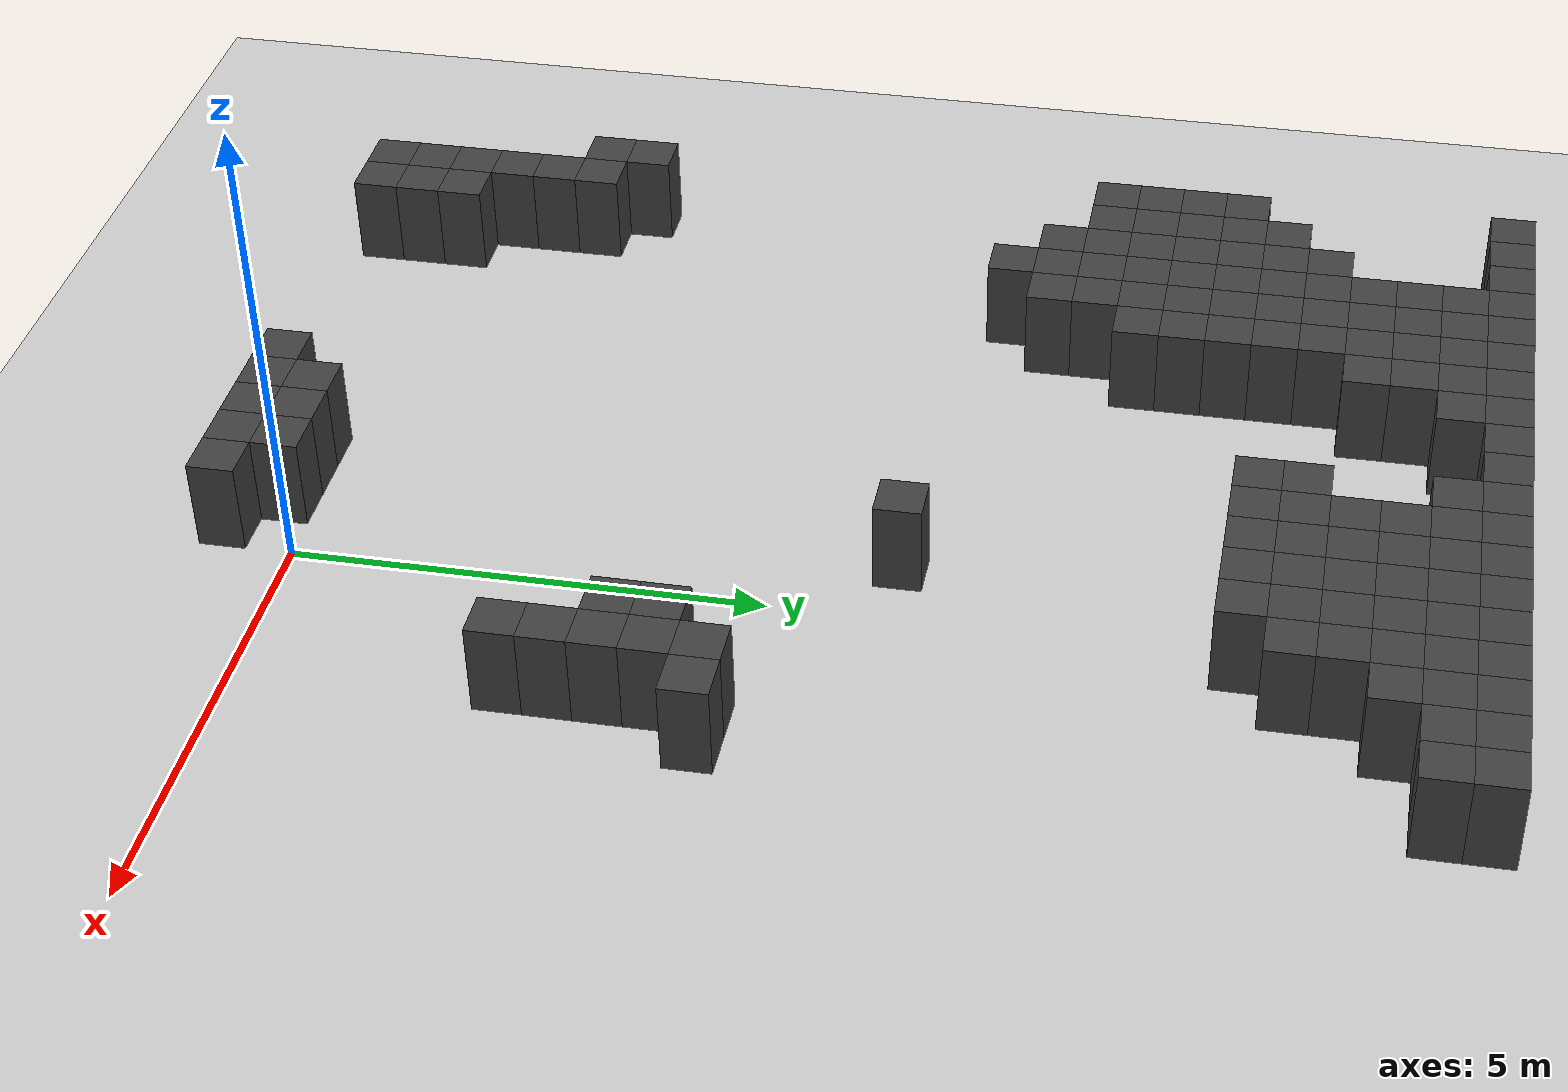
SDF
<sdf version="1.7">
 <world name="map_8843">
  <model name="ground_plane">
   <static>true</static>
   <link name="link">
    <collision name="collision">
     <geometry><plane><normal>0 0 1</normal><size>200 200</size></plane></geometry>
    </collision>
    <visual name="visual">
     <geometry><plane><normal>0 0 1</normal><size>200 200</size></plane></geometry>
     <material><ambient>0.8 0.8 0.8 1</ambient><diffuse>0.8 0.8 0.8 1</diffuse></material>
    </visual>
   </link>
  </model>
  <model name="maze_environment">
   <static>true</static>
   <link name="wall_11">
    <pose>-6.750 12.250 0.500 0 0 0</pose>
    <collision name="col"><geometry><box><size>0.5 0.5 1.0</size></box></geometry></collision>
    <visual name="vis">
     <geometry><box><size>0.5 0.5 1.0</size></box></geometry>
     <material><ambient>0.15 0.15 0.15 1</ambient><diffuse>0.25 0.25 0.25 1</diffuse></material>
    </visual>
   </link>
   <link name="wall_12">
    <pose>-6.250 12.250 0.500 0 0 0</pose>
    <collision name="col"><geometry><box><size>0.5 0.5 1.0</size></box></geometry></collision>
    <visual name="vis">
     <geometry><box><size>0.5 0.5 1.0</size></box></geometry>
     <material><ambient>0.15 0.15 0.15 1</ambient><diffuse>0.25 0.25 0.25 1</diffuse></material>
    </visual>
   </link>
   <link name="wall_13">
    <pose>-5.750 12.250 0.500 0 0 0</pose>
    <collision name="col"><geometry><box><size>0.5 0.5 1.0</size></box></geometry></collision>
    <visual name="vis">
     <geometry><box><size>0.5 0.5 1.0</size></box></geometry>
     <material><ambient>0.15 0.15 0.15 1</ambient><diffuse>0.25 0.25 0.25 1</diffuse></material>
    </visual>
   </link>
   <link name="wall_14">
    <pose>-5.250 12.250 0.500 0 0 0</pose>
    <collision name="col"><geometry><box><size>0.5 0.5 1.0</size></box></geometry></collision>
    <visual name="vis">
     <geometry><box><size>0.5 0.5 1.0</size></box></geometry>
     <material><ambient>0.15 0.15 0.15 1</ambient><diffuse>0.25 0.25 0.25 1</diffuse></material>
    </visual>
   </link>
   <link name="wall_15">
    <pose>-4.750 12.250 0.500 0 0 0</pose>
    <collision name="col"><geometry><box><size>0.5 0.5 1.0</size></box></geometry></collision>
    <visual name="vis">
     <geometry><box><size>0.5 0.5 1.0</size></box></geometry>
     <material><ambient>0.15 0.15 0.15 1</ambient><diffuse>0.25 0.25 0.25 1</diffuse></material>
    </visual>
   </link>
   <link name="wall_16">
    <pose>-4.250 12.250 0.500 0 0 0</pose>
    <collision name="col"><geometry><box><size>0.5 0.5 1.0</size></box></geometry></collision>
    <visual name="vis">
     <geometry><box><size>0.5 0.5 1.0</size></box></geometry>
     <material><ambient>0.15 0.15 0.15 1</ambient><diffuse>0.25 0.25 0.25 1</diffuse></material>
    </visual>
   </link>
   <link name="wall_17">
    <pose>-3.750 12.250 0.500 0 0 0</pose>
    <collision name="col"><geometry><box><size>0.5 0.5 1.0</size></box></geometry></collision>
    <visual name="vis">
     <geometry><box><size>0.5 0.5 1.0</size></box></geometry>
     <material><ambient>0.15 0.15 0.15 1</ambient><diffuse>0.25 0.25 0.25 1</diffuse></material>
    </visual>
   </link>
   <link name="wall_18">
    <pose>-3.250 12.250 0.500 0 0 0</pose>
    <collision name="col"><geometry><box><size>0.5 0.5 1.0</size></box></geometry></collision>
    <visual name="vis">
     <geometry><box><size>0.5 0.5 1.0</size></box></geometry>
     <material><ambient>0.15 0.15 0.15 1</ambient><diffuse>0.25 0.25 0.25 1</diffuse></material>
    </visual>
   </link>
   <link name="wall_19">
    <pose>-2.750 12.250 0.500 0 0 0</pose>
    <collision name="col"><geometry><box><size>0.5 0.5 1.0</size></box></geometry></collision>
    <visual name="vis">
     <geometry><box><size>0.5 0.5 1.0</size></box></geometry>
     <material><ambient>0.15 0.15 0.15 1</ambient><diffuse>0.25 0.25 0.25 1</diffuse></material>
    </visual>
   </link>
   <link name="wall_20">
    <pose>-2.250 12.250 0.500 0 0 0</pose>
    <collision name="col"><geometry><box><size>0.5 0.5 1.0</size></box></geometry></collision>
    <visual name="vis">
     <geometry><box><size>0.5 0.5 1.0</size></box></geometry>
     <material><ambient>0.15 0.15 0.15 1</ambient><diffuse>0.25 0.25 0.25 1</diffuse></material>
    </visual>
   </link>
   <link name="wall_21">
    <pose>-1.750 12.250 0.500 0 0 0</pose>
    <collision name="col"><geometry><box><size>0.5 0.5 1.0</size></box></geometry></collision>
    <visual name="vis">
     <geometry><box><size>0.5 0.5 1.0</size></box></geometry>
     <material><ambient>0.15 0.15 0.15 1</ambient><diffuse>0.25 0.25 0.25 1</diffuse></material>
    </visual>
   </link>
   <link name="wall_22">
    <pose>-1.250 12.250 0.500 0 0 0</pose>
    <collision name="col"><geometry><box><size>0.5 0.5 1.0</size></box></geometry></collision>
    <visual name="vis">
     <geometry><box><size>0.5 0.5 1.0</size></box></geometry>
     <material><ambient>0.15 0.15 0.15 1</ambient><diffuse>0.25 0.25 0.25 1</diffuse></material>
    </visual>
   </link>
   <link name="wall_23">
    <pose>-0.750 12.250 0.500 0 0 0</pose>
    <collision name="col"><geometry><box><size>0.5 0.5 1.0</size></box></geometry></collision>
    <visual name="vis">
     <geometry><box><size>0.5 0.5 1.0</size></box></geometry>
     <material><ambient>0.15 0.15 0.15 1</ambient><diffuse>0.25 0.25 0.25 1</diffuse></material>
    </visual>
   </link>
   <link name="wall_24">
    <pose>-0.250 12.250 0.500 0 0 0</pose>
    <collision name="col"><geometry><box><size>0.5 0.5 1.0</size></box></geometry></collision>
    <visual name="vis">
     <geometry><box><size>0.5 0.5 1.0</size></box></geometry>
     <material><ambient>0.15 0.15 0.15 1</ambient><diffuse>0.25 0.25 0.25 1</diffuse></material>
    </visual>
   </link>
   <link name="wall_25">
    <pose>0.250 12.250 0.500 0 0 0</pose>
    <collision name="col"><geometry><box><size>0.5 0.5 1.0</size></box></geometry></collision>
    <visual name="vis">
     <geometry><box><size>0.5 0.5 1.0</size></box></geometry>
     <material><ambient>0.15 0.15 0.15 1</ambient><diffuse>0.25 0.25 0.25 1</diffuse></material>
    </visual>
   </link>
   <link name="wall_26">
    <pose>0.750 12.250 0.500 0 0 0</pose>
    <collision name="col"><geometry><box><size>0.5 0.5 1.0</size></box></geometry></collision>
    <visual name="vis">
     <geometry><box><size>0.5 0.5 1.0</size></box></geometry>
     <material><ambient>0.15 0.15 0.15 1</ambient><diffuse>0.25 0.25 0.25 1</diffuse></material>
    </visual>
   </link>
   <link name="wall_27">
    <pose>1.250 12.250 0.500 0 0 0</pose>
    <collision name="col"><geometry><box><size>0.5 0.5 1.0</size></box></geometry></collision>
    <visual name="vis">
     <geometry><box><size>0.5 0.5 1.0</size></box></geometry>
     <material><ambient>0.15 0.15 0.15 1</ambient><diffuse>0.25 0.25 0.25 1</diffuse></material>
    </visual>
   </link>
   <link name="wall_28">
    <pose>1.750 12.250 0.500 0 0 0</pose>
    <collision name="col"><geometry><box><size>0.5 0.5 1.0</size></box></geometry></collision>
    <visual name="vis">
     <geometry><box><size>0.5 0.5 1.0</size></box></geometry>
     <material><ambient>0.15 0.15 0.15 1</ambient><diffuse>0.25 0.25 0.25 1</diffuse></material>
    </visual>
   </link>
   <link name="wall_29">
    <pose>2.250 12.250 0.500 0 0 0</pose>
    <collision name="col"><geometry><box><size>0.5 0.5 1.0</size></box></geometry></collision>
    <visual name="vis">
     <geometry><box><size>0.5 0.5 1.0</size></box></geometry>
     <material><ambient>0.15 0.15 0.15 1</ambient><diffuse>0.25 0.25 0.25 1</diffuse></material>
    </visual>
   </link>
   <link name="wall_54">
    <pose>-5.250 11.750 0.500 0 0 0</pose>
    <collision name="col"><geometry><box><size>0.5 0.5 1.0</size></box></geometry></collision>
    <visual name="vis">
     <geometry><box><size>0.5 0.5 1.0</size></box></geometry>
     <material><ambient>0.15 0.15 0.15 1</ambient><diffuse>0.25 0.25 0.25 1</diffuse></material>
    </visual>
   </link>
   <link name="wall_55">
    <pose>-4.750 11.750 0.500 0 0 0</pose>
    <collision name="col"><geometry><box><size>0.5 0.5 1.0</size></box></geometry></collision>
    <visual name="vis">
     <geometry><box><size>0.5 0.5 1.0</size></box></geometry>
     <material><ambient>0.15 0.15 0.15 1</ambient><diffuse>0.25 0.25 0.25 1</diffuse></material>
    </visual>
   </link>
   <link name="wall_56">
    <pose>-4.250 11.750 0.500 0 0 0</pose>
    <collision name="col"><geometry><box><size>0.5 0.5 1.0</size></box></geometry></collision>
    <visual name="vis">
     <geometry><box><size>0.5 0.5 1.0</size></box></geometry>
     <material><ambient>0.15 0.15 0.15 1</ambient><diffuse>0.25 0.25 0.25 1</diffuse></material>
    </visual>
   </link>
   <link name="wall_57">
    <pose>-3.750 11.750 0.500 0 0 0</pose>
    <collision name="col"><geometry><box><size>0.5 0.5 1.0</size></box></geometry></collision>
    <visual name="vis">
     <geometry><box><size>0.5 0.5 1.0</size></box></geometry>
     <material><ambient>0.15 0.15 0.15 1</ambient><diffuse>0.25 0.25 0.25 1</diffuse></material>
    </visual>
   </link>
   <link name="wall_58">
    <pose>-3.250 11.750 0.500 0 0 0</pose>
    <collision name="col"><geometry><box><size>0.5 0.5 1.0</size></box></geometry></collision>
    <visual name="vis">
     <geometry><box><size>0.5 0.5 1.0</size></box></geometry>
     <material><ambient>0.15 0.15 0.15 1</ambient><diffuse>0.25 0.25 0.25 1</diffuse></material>
    </visual>
   </link>
   <link name="wall_59">
    <pose>-1.750 11.750 0.500 0 0 0</pose>
    <collision name="col"><geometry><box><size>0.5 0.5 1.0</size></box></geometry></collision>
    <visual name="vis">
     <geometry><box><size>0.5 0.5 1.0</size></box></geometry>
     <material><ambient>0.15 0.15 0.15 1</ambient><diffuse>0.25 0.25 0.25 1</diffuse></material>
    </visual>
   </link>
   <link name="wall_60">
    <pose>-1.250 11.750 0.500 0 0 0</pose>
    <collision name="col"><geometry><box><size>0.5 0.5 1.0</size></box></geometry></collision>
    <visual name="vis">
     <geometry><box><size>0.5 0.5 1.0</size></box></geometry>
     <material><ambient>0.15 0.15 0.15 1</ambient><diffuse>0.25 0.25 0.25 1</diffuse></material>
    </visual>
   </link>
   <link name="wall_61">
    <pose>-0.750 11.750 0.500 0 0 0</pose>
    <collision name="col"><geometry><box><size>0.5 0.5 1.0</size></box></geometry></collision>
    <visual name="vis">
     <geometry><box><size>0.5 0.5 1.0</size></box></geometry>
     <material><ambient>0.15 0.15 0.15 1</ambient><diffuse>0.25 0.25 0.25 1</diffuse></material>
    </visual>
   </link>
   <link name="wall_62">
    <pose>-0.250 11.750 0.500 0 0 0</pose>
    <collision name="col"><geometry><box><size>0.5 0.5 1.0</size></box></geometry></collision>
    <visual name="vis">
     <geometry><box><size>0.5 0.5 1.0</size></box></geometry>
     <material><ambient>0.15 0.15 0.15 1</ambient><diffuse>0.25 0.25 0.25 1</diffuse></material>
    </visual>
   </link>
   <link name="wall_63">
    <pose>0.250 11.750 0.500 0 0 0</pose>
    <collision name="col"><geometry><box><size>0.5 0.5 1.0</size></box></geometry></collision>
    <visual name="vis">
     <geometry><box><size>0.5 0.5 1.0</size></box></geometry>
     <material><ambient>0.15 0.15 0.15 1</ambient><diffuse>0.25 0.25 0.25 1</diffuse></material>
    </visual>
   </link>
   <link name="wall_64">
    <pose>0.750 11.750 0.500 0 0 0</pose>
    <collision name="col"><geometry><box><size>0.5 0.5 1.0</size></box></geometry></collision>
    <visual name="vis">
     <geometry><box><size>0.5 0.5 1.0</size></box></geometry>
     <material><ambient>0.15 0.15 0.15 1</ambient><diffuse>0.25 0.25 0.25 1</diffuse></material>
    </visual>
   </link>
   <link name="wall_65">
    <pose>1.250 11.750 0.500 0 0 0</pose>
    <collision name="col"><geometry><box><size>0.5 0.5 1.0</size></box></geometry></collision>
    <visual name="vis">
     <geometry><box><size>0.5 0.5 1.0</size></box></geometry>
     <material><ambient>0.15 0.15 0.15 1</ambient><diffuse>0.25 0.25 0.25 1</diffuse></material>
    </visual>
   </link>
   <link name="wall_66">
    <pose>1.750 11.750 0.500 0 0 0</pose>
    <collision name="col"><geometry><box><size>0.5 0.5 1.0</size></box></geometry></collision>
    <visual name="vis">
     <geometry><box><size>0.5 0.5 1.0</size></box></geometry>
     <material><ambient>0.15 0.15 0.15 1</ambient><diffuse>0.25 0.25 0.25 1</diffuse></material>
    </visual>
   </link>
   <link name="wall_67">
    <pose>2.250 11.750 0.500 0 0 0</pose>
    <collision name="col"><geometry><box><size>0.5 0.5 1.0</size></box></geometry></collision>
    <visual name="vis">
     <geometry><box><size>0.5 0.5 1.0</size></box></geometry>
     <material><ambient>0.15 0.15 0.15 1</ambient><diffuse>0.25 0.25 0.25 1</diffuse></material>
    </visual>
   </link>
   <link name="wall_87">
    <pose>-5.250 11.250 0.500 0 0 0</pose>
    <collision name="col"><geometry><box><size>0.5 0.5 1.0</size></box></geometry></collision>
    <visual name="vis">
     <geometry><box><size>0.5 0.5 1.0</size></box></geometry>
     <material><ambient>0.15 0.15 0.15 1</ambient><diffuse>0.25 0.25 0.25 1</diffuse></material>
    </visual>
   </link>
   <link name="wall_88">
    <pose>-4.750 11.250 0.500 0 0 0</pose>
    <collision name="col"><geometry><box><size>0.5 0.5 1.0</size></box></geometry></collision>
    <visual name="vis">
     <geometry><box><size>0.5 0.5 1.0</size></box></geometry>
     <material><ambient>0.15 0.15 0.15 1</ambient><diffuse>0.25 0.25 0.25 1</diffuse></material>
    </visual>
   </link>
   <link name="wall_89">
    <pose>-4.250 11.250 0.500 0 0 0</pose>
    <collision name="col"><geometry><box><size>0.5 0.5 1.0</size></box></geometry></collision>
    <visual name="vis">
     <geometry><box><size>0.5 0.5 1.0</size></box></geometry>
     <material><ambient>0.15 0.15 0.15 1</ambient><diffuse>0.25 0.25 0.25 1</diffuse></material>
    </visual>
   </link>
   <link name="wall_90">
    <pose>-3.750 11.250 0.500 0 0 0</pose>
    <collision name="col"><geometry><box><size>0.5 0.5 1.0</size></box></geometry></collision>
    <visual name="vis">
     <geometry><box><size>0.5 0.5 1.0</size></box></geometry>
     <material><ambient>0.15 0.15 0.15 1</ambient><diffuse>0.25 0.25 0.25 1</diffuse></material>
    </visual>
   </link>
   <link name="wall_91">
    <pose>-1.250 11.250 0.500 0 0 0</pose>
    <collision name="col"><geometry><box><size>0.5 0.5 1.0</size></box></geometry></collision>
    <visual name="vis">
     <geometry><box><size>0.5 0.5 1.0</size></box></geometry>
     <material><ambient>0.15 0.15 0.15 1</ambient><diffuse>0.25 0.25 0.25 1</diffuse></material>
    </visual>
   </link>
   <link name="wall_92">
    <pose>-0.750 11.250 0.500 0 0 0</pose>
    <collision name="col"><geometry><box><size>0.5 0.5 1.0</size></box></geometry></collision>
    <visual name="vis">
     <geometry><box><size>0.5 0.5 1.0</size></box></geometry>
     <material><ambient>0.15 0.15 0.15 1</ambient><diffuse>0.25 0.25 0.25 1</diffuse></material>
    </visual>
   </link>
   <link name="wall_93">
    <pose>-0.250 11.250 0.500 0 0 0</pose>
    <collision name="col"><geometry><box><size>0.5 0.5 1.0</size></box></geometry></collision>
    <visual name="vis">
     <geometry><box><size>0.5 0.5 1.0</size></box></geometry>
     <material><ambient>0.15 0.15 0.15 1</ambient><diffuse>0.25 0.25 0.25 1</diffuse></material>
    </visual>
   </link>
   <link name="wall_94">
    <pose>0.250 11.250 0.500 0 0 0</pose>
    <collision name="col"><geometry><box><size>0.5 0.5 1.0</size></box></geometry></collision>
    <visual name="vis">
     <geometry><box><size>0.5 0.5 1.0</size></box></geometry>
     <material><ambient>0.15 0.15 0.15 1</ambient><diffuse>0.25 0.25 0.25 1</diffuse></material>
    </visual>
   </link>
   <link name="wall_95">
    <pose>0.750 11.250 0.500 0 0 0</pose>
    <collision name="col"><geometry><box><size>0.5 0.5 1.0</size></box></geometry></collision>
    <visual name="vis">
     <geometry><box><size>0.5 0.5 1.0</size></box></geometry>
     <material><ambient>0.15 0.15 0.15 1</ambient><diffuse>0.25 0.25 0.25 1</diffuse></material>
    </visual>
   </link>
   <link name="wall_96">
    <pose>1.250 11.250 0.500 0 0 0</pose>
    <collision name="col"><geometry><box><size>0.5 0.5 1.0</size></box></geometry></collision>
    <visual name="vis">
     <geometry><box><size>0.5 0.5 1.0</size></box></geometry>
     <material><ambient>0.15 0.15 0.15 1</ambient><diffuse>0.25 0.25 0.25 1</diffuse></material>
    </visual>
   </link>
   <link name="wall_107">
    <pose>-5.250 10.750 0.500 0 0 0</pose>
    <collision name="col"><geometry><box><size>0.5 0.5 1.0</size></box></geometry></collision>
    <visual name="vis">
     <geometry><box><size>0.5 0.5 1.0</size></box></geometry>
     <material><ambient>0.15 0.15 0.15 1</ambient><diffuse>0.25 0.25 0.25 1</diffuse></material>
    </visual>
   </link>
   <link name="wall_108">
    <pose>-4.750 10.750 0.500 0 0 0</pose>
    <collision name="col"><geometry><box><size>0.5 0.5 1.0</size></box></geometry></collision>
    <visual name="vis">
     <geometry><box><size>0.5 0.5 1.0</size></box></geometry>
     <material><ambient>0.15 0.15 0.15 1</ambient><diffuse>0.25 0.25 0.25 1</diffuse></material>
    </visual>
   </link>
   <link name="wall_109">
    <pose>-4.250 10.750 0.500 0 0 0</pose>
    <collision name="col"><geometry><box><size>0.5 0.5 1.0</size></box></geometry></collision>
    <visual name="vis">
     <geometry><box><size>0.5 0.5 1.0</size></box></geometry>
     <material><ambient>0.15 0.15 0.15 1</ambient><diffuse>0.25 0.25 0.25 1</diffuse></material>
    </visual>
   </link>
   <link name="wall_110">
    <pose>-3.750 10.750 0.500 0 0 0</pose>
    <collision name="col"><geometry><box><size>0.5 0.5 1.0</size></box></geometry></collision>
    <visual name="vis">
     <geometry><box><size>0.5 0.5 1.0</size></box></geometry>
     <material><ambient>0.15 0.15 0.15 1</ambient><diffuse>0.25 0.25 0.25 1</diffuse></material>
    </visual>
   </link>
   <link name="wall_111">
    <pose>-1.250 10.750 0.500 0 0 0</pose>
    <collision name="col"><geometry><box><size>0.5 0.5 1.0</size></box></geometry></collision>
    <visual name="vis">
     <geometry><box><size>0.5 0.5 1.0</size></box></geometry>
     <material><ambient>0.15 0.15 0.15 1</ambient><diffuse>0.25 0.25 0.25 1</diffuse></material>
    </visual>
   </link>
   <link name="wall_112">
    <pose>-0.750 10.750 0.500 0 0 0</pose>
    <collision name="col"><geometry><box><size>0.5 0.5 1.0</size></box></geometry></collision>
    <visual name="vis">
     <geometry><box><size>0.5 0.5 1.0</size></box></geometry>
     <material><ambient>0.15 0.15 0.15 1</ambient><diffuse>0.25 0.25 0.25 1</diffuse></material>
    </visual>
   </link>
   <link name="wall_113">
    <pose>-0.250 10.750 0.500 0 0 0</pose>
    <collision name="col"><geometry><box><size>0.5 0.5 1.0</size></box></geometry></collision>
    <visual name="vis">
     <geometry><box><size>0.5 0.5 1.0</size></box></geometry>
     <material><ambient>0.15 0.15 0.15 1</ambient><diffuse>0.25 0.25 0.25 1</diffuse></material>
    </visual>
   </link>
   <link name="wall_114">
    <pose>0.250 10.750 0.500 0 0 0</pose>
    <collision name="col"><geometry><box><size>0.5 0.5 1.0</size></box></geometry></collision>
    <visual name="vis">
     <geometry><box><size>0.5 0.5 1.0</size></box></geometry>
     <material><ambient>0.15 0.15 0.15 1</ambient><diffuse>0.25 0.25 0.25 1</diffuse></material>
    </visual>
   </link>
   <link name="wall_115">
    <pose>0.750 10.750 0.500 0 0 0</pose>
    <collision name="col"><geometry><box><size>0.5 0.5 1.0</size></box></geometry></collision>
    <visual name="vis">
     <geometry><box><size>0.5 0.5 1.0</size></box></geometry>
     <material><ambient>0.15 0.15 0.15 1</ambient><diffuse>0.25 0.25 0.25 1</diffuse></material>
    </visual>
   </link>
   <link name="wall_124">
    <pose>-5.750 10.250 0.500 0 0 0</pose>
    <collision name="col"><geometry><box><size>0.5 0.5 1.0</size></box></geometry></collision>
    <visual name="vis">
     <geometry><box><size>0.5 0.5 1.0</size></box></geometry>
     <material><ambient>0.15 0.15 0.15 1</ambient><diffuse>0.25 0.25 0.25 1</diffuse></material>
    </visual>
   </link>
   <link name="wall_125">
    <pose>-5.250 10.250 0.500 0 0 0</pose>
    <collision name="col"><geometry><box><size>0.5 0.5 1.0</size></box></geometry></collision>
    <visual name="vis">
     <geometry><box><size>0.5 0.5 1.0</size></box></geometry>
     <material><ambient>0.15 0.15 0.15 1</ambient><diffuse>0.25 0.25 0.25 1</diffuse></material>
    </visual>
   </link>
   <link name="wall_126">
    <pose>-4.750 10.250 0.500 0 0 0</pose>
    <collision name="col"><geometry><box><size>0.5 0.5 1.0</size></box></geometry></collision>
    <visual name="vis">
     <geometry><box><size>0.5 0.5 1.0</size></box></geometry>
     <material><ambient>0.15 0.15 0.15 1</ambient><diffuse>0.25 0.25 0.25 1</diffuse></material>
    </visual>
   </link>
   <link name="wall_127">
    <pose>-4.250 10.250 0.500 0 0 0</pose>
    <collision name="col"><geometry><box><size>0.5 0.5 1.0</size></box></geometry></collision>
    <visual name="vis">
     <geometry><box><size>0.5 0.5 1.0</size></box></geometry>
     <material><ambient>0.15 0.15 0.15 1</ambient><diffuse>0.25 0.25 0.25 1</diffuse></material>
    </visual>
   </link>
   <link name="wall_128">
    <pose>-1.750 10.250 0.500 0 0 0</pose>
    <collision name="col"><geometry><box><size>0.5 0.5 1.0</size></box></geometry></collision>
    <visual name="vis">
     <geometry><box><size>0.5 0.5 1.0</size></box></geometry>
     <material><ambient>0.15 0.15 0.15 1</ambient><diffuse>0.25 0.25 0.25 1</diffuse></material>
    </visual>
   </link>
   <link name="wall_129">
    <pose>-1.250 10.250 0.500 0 0 0</pose>
    <collision name="col"><geometry><box><size>0.5 0.5 1.0</size></box></geometry></collision>
    <visual name="vis">
     <geometry><box><size>0.5 0.5 1.0</size></box></geometry>
     <material><ambient>0.15 0.15 0.15 1</ambient><diffuse>0.25 0.25 0.25 1</diffuse></material>
    </visual>
   </link>
   <link name="wall_130">
    <pose>-0.750 10.250 0.500 0 0 0</pose>
    <collision name="col"><geometry><box><size>0.5 0.5 1.0</size></box></geometry></collision>
    <visual name="vis">
     <geometry><box><size>0.5 0.5 1.0</size></box></geometry>
     <material><ambient>0.15 0.15 0.15 1</ambient><diffuse>0.25 0.25 0.25 1</diffuse></material>
    </visual>
   </link>
   <link name="wall_131">
    <pose>-0.250 10.250 0.500 0 0 0</pose>
    <collision name="col"><geometry><box><size>0.5 0.5 1.0</size></box></geometry></collision>
    <visual name="vis">
     <geometry><box><size>0.5 0.5 1.0</size></box></geometry>
     <material><ambient>0.15 0.15 0.15 1</ambient><diffuse>0.25 0.25 0.25 1</diffuse></material>
    </visual>
   </link>
   <link name="wall_132">
    <pose>0.250 10.250 0.500 0 0 0</pose>
    <collision name="col"><geometry><box><size>0.5 0.5 1.0</size></box></geometry></collision>
    <visual name="vis">
     <geometry><box><size>0.5 0.5 1.0</size></box></geometry>
     <material><ambient>0.15 0.15 0.15 1</ambient><diffuse>0.25 0.25 0.25 1</diffuse></material>
    </visual>
   </link>
   <link name="wall_133">
    <pose>0.750 10.250 0.500 0 0 0</pose>
    <collision name="col"><geometry><box><size>0.5 0.5 1.0</size></box></geometry></collision>
    <visual name="vis">
     <geometry><box><size>0.5 0.5 1.0</size></box></geometry>
     <material><ambient>0.15 0.15 0.15 1</ambient><diffuse>0.25 0.25 0.25 1</diffuse></material>
    </visual>
   </link>
   <link name="wall_144">
    <pose>-6.250 9.750 0.500 0 0 0</pose>
    <collision name="col"><geometry><box><size>0.5 0.5 1.0</size></box></geometry></collision>
    <visual name="vis">
     <geometry><box><size>0.5 0.5 1.0</size></box></geometry>
     <material><ambient>0.15 0.15 0.15 1</ambient><diffuse>0.25 0.25 0.25 1</diffuse></material>
    </visual>
   </link>
   <link name="wall_145">
    <pose>-5.750 9.750 0.500 0 0 0</pose>
    <collision name="col"><geometry><box><size>0.5 0.5 1.0</size></box></geometry></collision>
    <visual name="vis">
     <geometry><box><size>0.5 0.5 1.0</size></box></geometry>
     <material><ambient>0.15 0.15 0.15 1</ambient><diffuse>0.25 0.25 0.25 1</diffuse></material>
    </visual>
   </link>
   <link name="wall_146">
    <pose>-5.250 9.750 0.500 0 0 0</pose>
    <collision name="col"><geometry><box><size>0.5 0.5 1.0</size></box></geometry></collision>
    <visual name="vis">
     <geometry><box><size>0.5 0.5 1.0</size></box></geometry>
     <material><ambient>0.15 0.15 0.15 1</ambient><diffuse>0.25 0.25 0.25 1</diffuse></material>
    </visual>
   </link>
   <link name="wall_147">
    <pose>-4.750 9.750 0.500 0 0 0</pose>
    <collision name="col"><geometry><box><size>0.5 0.5 1.0</size></box></geometry></collision>
    <visual name="vis">
     <geometry><box><size>0.5 0.5 1.0</size></box></geometry>
     <material><ambient>0.15 0.15 0.15 1</ambient><diffuse>0.25 0.25 0.25 1</diffuse></material>
    </visual>
   </link>
   <link name="wall_148">
    <pose>-4.250 9.750 0.500 0 0 0</pose>
    <collision name="col"><geometry><box><size>0.5 0.5 1.0</size></box></geometry></collision>
    <visual name="vis">
     <geometry><box><size>0.5 0.5 1.0</size></box></geometry>
     <material><ambient>0.15 0.15 0.15 1</ambient><diffuse>0.25 0.25 0.25 1</diffuse></material>
    </visual>
   </link>
   <link name="wall_149">
    <pose>-1.750 9.750 0.500 0 0 0</pose>
    <collision name="col"><geometry><box><size>0.5 0.5 1.0</size></box></geometry></collision>
    <visual name="vis">
     <geometry><box><size>0.5 0.5 1.0</size></box></geometry>
     <material><ambient>0.15 0.15 0.15 1</ambient><diffuse>0.25 0.25 0.25 1</diffuse></material>
    </visual>
   </link>
   <link name="wall_150">
    <pose>-1.250 9.750 0.500 0 0 0</pose>
    <collision name="col"><geometry><box><size>0.5 0.5 1.0</size></box></geometry></collision>
    <visual name="vis">
     <geometry><box><size>0.5 0.5 1.0</size></box></geometry>
     <material><ambient>0.15 0.15 0.15 1</ambient><diffuse>0.25 0.25 0.25 1</diffuse></material>
    </visual>
   </link>
   <link name="wall_151">
    <pose>-0.750 9.750 0.500 0 0 0</pose>
    <collision name="col"><geometry><box><size>0.5 0.5 1.0</size></box></geometry></collision>
    <visual name="vis">
     <geometry><box><size>0.5 0.5 1.0</size></box></geometry>
     <material><ambient>0.15 0.15 0.15 1</ambient><diffuse>0.25 0.25 0.25 1</diffuse></material>
    </visual>
   </link>
   <link name="wall_152">
    <pose>-0.250 9.750 0.500 0 0 0</pose>
    <collision name="col"><geometry><box><size>0.5 0.5 1.0</size></box></geometry></collision>
    <visual name="vis">
     <geometry><box><size>0.5 0.5 1.0</size></box></geometry>
     <material><ambient>0.15 0.15 0.15 1</ambient><diffuse>0.25 0.25 0.25 1</diffuse></material>
    </visual>
   </link>
   <link name="wall_153">
    <pose>0.250 9.750 0.500 0 0 0</pose>
    <collision name="col"><geometry><box><size>0.5 0.5 1.0</size></box></geometry></collision>
    <visual name="vis">
     <geometry><box><size>0.5 0.5 1.0</size></box></geometry>
     <material><ambient>0.15 0.15 0.15 1</ambient><diffuse>0.25 0.25 0.25 1</diffuse></material>
    </visual>
   </link>
   <link name="wall_170">
    <pose>-6.750 9.250 0.500 0 0 0</pose>
    <collision name="col"><geometry><box><size>0.5 0.5 1.0</size></box></geometry></collision>
    <visual name="vis">
     <geometry><box><size>0.5 0.5 1.0</size></box></geometry>
     <material><ambient>0.15 0.15 0.15 1</ambient><diffuse>0.25 0.25 0.25 1</diffuse></material>
    </visual>
   </link>
   <link name="wall_171">
    <pose>-6.250 9.250 0.500 0 0 0</pose>
    <collision name="col"><geometry><box><size>0.5 0.5 1.0</size></box></geometry></collision>
    <visual name="vis">
     <geometry><box><size>0.5 0.5 1.0</size></box></geometry>
     <material><ambient>0.15 0.15 0.15 1</ambient><diffuse>0.25 0.25 0.25 1</diffuse></material>
    </visual>
   </link>
   <link name="wall_172">
    <pose>-5.750 9.250 0.500 0 0 0</pose>
    <collision name="col"><geometry><box><size>0.5 0.5 1.0</size></box></geometry></collision>
    <visual name="vis">
     <geometry><box><size>0.5 0.5 1.0</size></box></geometry>
     <material><ambient>0.15 0.15 0.15 1</ambient><diffuse>0.25 0.25 0.25 1</diffuse></material>
    </visual>
   </link>
   <link name="wall_173">
    <pose>-5.250 9.250 0.500 0 0 0</pose>
    <collision name="col"><geometry><box><size>0.5 0.5 1.0</size></box></geometry></collision>
    <visual name="vis">
     <geometry><box><size>0.5 0.5 1.0</size></box></geometry>
     <material><ambient>0.15 0.15 0.15 1</ambient><diffuse>0.25 0.25 0.25 1</diffuse></material>
    </visual>
   </link>
   <link name="wall_174">
    <pose>-4.750 9.250 0.500 0 0 0</pose>
    <collision name="col"><geometry><box><size>0.5 0.5 1.0</size></box></geometry></collision>
    <visual name="vis">
     <geometry><box><size>0.5 0.5 1.0</size></box></geometry>
     <material><ambient>0.15 0.15 0.15 1</ambient><diffuse>0.25 0.25 0.25 1</diffuse></material>
    </visual>
   </link>
   <link name="wall_175">
    <pose>-4.250 9.250 0.500 0 0 0</pose>
    <collision name="col"><geometry><box><size>0.5 0.5 1.0</size></box></geometry></collision>
    <visual name="vis">
     <geometry><box><size>0.5 0.5 1.0</size></box></geometry>
     <material><ambient>0.15 0.15 0.15 1</ambient><diffuse>0.25 0.25 0.25 1</diffuse></material>
    </visual>
   </link>
   <link name="wall_192">
    <pose>-6.750 8.750 0.500 0 0 0</pose>
    <collision name="col"><geometry><box><size>0.5 0.5 1.0</size></box></geometry></collision>
    <visual name="vis">
     <geometry><box><size>0.5 0.5 1.0</size></box></geometry>
     <material><ambient>0.15 0.15 0.15 1</ambient><diffuse>0.25 0.25 0.25 1</diffuse></material>
    </visual>
   </link>
   <link name="wall_193">
    <pose>-6.250 8.750 0.500 0 0 0</pose>
    <collision name="col"><geometry><box><size>0.5 0.5 1.0</size></box></geometry></collision>
    <visual name="vis">
     <geometry><box><size>0.5 0.5 1.0</size></box></geometry>
     <material><ambient>0.15 0.15 0.15 1</ambient><diffuse>0.25 0.25 0.25 1</diffuse></material>
    </visual>
   </link>
   <link name="wall_194">
    <pose>-5.750 8.750 0.500 0 0 0</pose>
    <collision name="col"><geometry><box><size>0.5 0.5 1.0</size></box></geometry></collision>
    <visual name="vis">
     <geometry><box><size>0.5 0.5 1.0</size></box></geometry>
     <material><ambient>0.15 0.15 0.15 1</ambient><diffuse>0.25 0.25 0.25 1</diffuse></material>
    </visual>
   </link>
   <link name="wall_195">
    <pose>-5.250 8.750 0.500 0 0 0</pose>
    <collision name="col"><geometry><box><size>0.5 0.5 1.0</size></box></geometry></collision>
    <visual name="vis">
     <geometry><box><size>0.5 0.5 1.0</size></box></geometry>
     <material><ambient>0.15 0.15 0.15 1</ambient><diffuse>0.25 0.25 0.25 1</diffuse></material>
    </visual>
   </link>
   <link name="wall_196">
    <pose>-4.750 8.750 0.500 0 0 0</pose>
    <collision name="col"><geometry><box><size>0.5 0.5 1.0</size></box></geometry></collision>
    <visual name="vis">
     <geometry><box><size>0.5 0.5 1.0</size></box></geometry>
     <material><ambient>0.15 0.15 0.15 1</ambient><diffuse>0.25 0.25 0.25 1</diffuse></material>
    </visual>
   </link>
   <link name="wall_197">
    <pose>-4.250 8.750 0.500 0 0 0</pose>
    <collision name="col"><geometry><box><size>0.5 0.5 1.0</size></box></geometry></collision>
    <visual name="vis">
     <geometry><box><size>0.5 0.5 1.0</size></box></geometry>
     <material><ambient>0.15 0.15 0.15 1</ambient><diffuse>0.25 0.25 0.25 1</diffuse></material>
    </visual>
   </link>
   <link name="wall_213">
    <pose>-6.750 8.250 0.500 0 0 0</pose>
    <collision name="col"><geometry><box><size>0.5 0.5 1.0</size></box></geometry></collision>
    <visual name="vis">
     <geometry><box><size>0.5 0.5 1.0</size></box></geometry>
     <material><ambient>0.15 0.15 0.15 1</ambient><diffuse>0.25 0.25 0.25 1</diffuse></material>
    </visual>
   </link>
   <link name="wall_214">
    <pose>-6.250 8.250 0.500 0 0 0</pose>
    <collision name="col"><geometry><box><size>0.5 0.5 1.0</size></box></geometry></collision>
    <visual name="vis">
     <geometry><box><size>0.5 0.5 1.0</size></box></geometry>
     <material><ambient>0.15 0.15 0.15 1</ambient><diffuse>0.25 0.25 0.25 1</diffuse></material>
    </visual>
   </link>
   <link name="wall_215">
    <pose>-5.750 8.250 0.500 0 0 0</pose>
    <collision name="col"><geometry><box><size>0.5 0.5 1.0</size></box></geometry></collision>
    <visual name="vis">
     <geometry><box><size>0.5 0.5 1.0</size></box></geometry>
     <material><ambient>0.15 0.15 0.15 1</ambient><diffuse>0.25 0.25 0.25 1</diffuse></material>
    </visual>
   </link>
   <link name="wall_216">
    <pose>-5.250 8.250 0.500 0 0 0</pose>
    <collision name="col"><geometry><box><size>0.5 0.5 1.0</size></box></geometry></collision>
    <visual name="vis">
     <geometry><box><size>0.5 0.5 1.0</size></box></geometry>
     <material><ambient>0.15 0.15 0.15 1</ambient><diffuse>0.25 0.25 0.25 1</diffuse></material>
    </visual>
   </link>
   <link name="wall_217">
    <pose>-4.750 8.250 0.500 0 0 0</pose>
    <collision name="col"><geometry><box><size>0.5 0.5 1.0</size></box></geometry></collision>
    <visual name="vis">
     <geometry><box><size>0.5 0.5 1.0</size></box></geometry>
     <material><ambient>0.15 0.15 0.15 1</ambient><diffuse>0.25 0.25 0.25 1</diffuse></material>
    </visual>
   </link>
   <link name="wall_218">
    <pose>-4.250 8.250 0.500 0 0 0</pose>
    <collision name="col"><geometry><box><size>0.5 0.5 1.0</size></box></geometry></collision>
    <visual name="vis">
     <geometry><box><size>0.5 0.5 1.0</size></box></geometry>
     <material><ambient>0.15 0.15 0.15 1</ambient><diffuse>0.25 0.25 0.25 1</diffuse></material>
    </visual>
   </link>
   <link name="wall_230">
    <pose>-6.750 7.750 0.500 0 0 0</pose>
    <collision name="col"><geometry><box><size>0.5 0.5 1.0</size></box></geometry></collision>
    <visual name="vis">
     <geometry><box><size>0.5 0.5 1.0</size></box></geometry>
     <material><ambient>0.15 0.15 0.15 1</ambient><diffuse>0.25 0.25 0.25 1</diffuse></material>
    </visual>
   </link>
   <link name="wall_231">
    <pose>-6.250 7.750 0.500 0 0 0</pose>
    <collision name="col"><geometry><box><size>0.5 0.5 1.0</size></box></geometry></collision>
    <visual name="vis">
     <geometry><box><size>0.5 0.5 1.0</size></box></geometry>
     <material><ambient>0.15 0.15 0.15 1</ambient><diffuse>0.25 0.25 0.25 1</diffuse></material>
    </visual>
   </link>
   <link name="wall_232">
    <pose>-5.750 7.750 0.500 0 0 0</pose>
    <collision name="col"><geometry><box><size>0.5 0.5 1.0</size></box></geometry></collision>
    <visual name="vis">
     <geometry><box><size>0.5 0.5 1.0</size></box></geometry>
     <material><ambient>0.15 0.15 0.15 1</ambient><diffuse>0.25 0.25 0.25 1</diffuse></material>
    </visual>
   </link>
   <link name="wall_233">
    <pose>-5.250 7.750 0.500 0 0 0</pose>
    <collision name="col"><geometry><box><size>0.5 0.5 1.0</size></box></geometry></collision>
    <visual name="vis">
     <geometry><box><size>0.5 0.5 1.0</size></box></geometry>
     <material><ambient>0.15 0.15 0.15 1</ambient><diffuse>0.25 0.25 0.25 1</diffuse></material>
    </visual>
   </link>
   <link name="wall_234">
    <pose>-4.750 7.750 0.500 0 0 0</pose>
    <collision name="col"><geometry><box><size>0.5 0.5 1.0</size></box></geometry></collision>
    <visual name="vis">
     <geometry><box><size>0.5 0.5 1.0</size></box></geometry>
     <material><ambient>0.15 0.15 0.15 1</ambient><diffuse>0.25 0.25 0.25 1</diffuse></material>
    </visual>
   </link>
   <link name="wall_248">
    <pose>-5.750 7.250 0.500 0 0 0</pose>
    <collision name="col"><geometry><box><size>0.5 0.5 1.0</size></box></geometry></collision>
    <visual name="vis">
     <geometry><box><size>0.5 0.5 1.0</size></box></geometry>
     <material><ambient>0.15 0.15 0.15 1</ambient><diffuse>0.25 0.25 0.25 1</diffuse></material>
    </visual>
   </link>
   <link name="wall_249">
    <pose>-5.250 7.250 0.500 0 0 0</pose>
    <collision name="col"><geometry><box><size>0.5 0.5 1.0</size></box></geometry></collision>
    <visual name="vis">
     <geometry><box><size>0.5 0.5 1.0</size></box></geometry>
     <material><ambient>0.15 0.15 0.15 1</ambient><diffuse>0.25 0.25 0.25 1</diffuse></material>
    </visual>
   </link>
   <link name="wall_250">
    <pose>-4.750 7.250 0.500 0 0 0</pose>
    <collision name="col"><geometry><box><size>0.5 0.5 1.0</size></box></geometry></collision>
    <visual name="vis">
     <geometry><box><size>0.5 0.5 1.0</size></box></geometry>
     <material><ambient>0.15 0.15 0.15 1</ambient><diffuse>0.25 0.25 0.25 1</diffuse></material>
    </visual>
   </link>
   <link name="wall_263">
    <pose>-5.250 6.750 0.500 0 0 0</pose>
    <collision name="col"><geometry><box><size>0.5 0.5 1.0</size></box></geometry></collision>
    <visual name="vis">
     <geometry><box><size>0.5 0.5 1.0</size></box></geometry>
     <material><ambient>0.15 0.15 0.15 1</ambient><diffuse>0.25 0.25 0.25 1</diffuse></material>
    </visual>
   </link>
   <link name="wall_282">
    <pose>-0.750 6.250 0.500 0 0 0</pose>
    <collision name="col"><geometry><box><size>0.5 0.5 1.0</size></box></geometry></collision>
    <visual name="vis">
     <geometry><box><size>0.5 0.5 1.0</size></box></geometry>
     <material><ambient>0.15 0.15 0.15 1</ambient><diffuse>0.25 0.25 0.25 1</diffuse></material>
    </visual>
   </link>
   <link name="wall_336">
    <pose>1.750 4.750 0.500 0 0 0</pose>
    <collision name="col"><geometry><box><size>0.5 0.5 1.0</size></box></geometry></collision>
    <visual name="vis">
     <geometry><box><size>0.5 0.5 1.0</size></box></geometry>
     <material><ambient>0.15 0.15 0.15 1</ambient><diffuse>0.25 0.25 0.25 1</diffuse></material>
    </visual>
   </link>
   <link name="wall_337">
    <pose>2.250 4.750 0.500 0 0 0</pose>
    <collision name="col"><geometry><box><size>0.5 0.5 1.0</size></box></geometry></collision>
    <visual name="vis">
     <geometry><box><size>0.5 0.5 1.0</size></box></geometry>
     <material><ambient>0.15 0.15 0.15 1</ambient><diffuse>0.25 0.25 0.25 1</diffuse></material>
    </visual>
   </link>
   <link name="wall_349">
    <pose>1.250 4.250 0.500 0 0 0</pose>
    <collision name="col"><geometry><box><size>0.5 0.5 1.0</size></box></geometry></collision>
    <visual name="vis">
     <geometry><box><size>0.5 0.5 1.0</size></box></geometry>
     <material><ambient>0.15 0.15 0.15 1</ambient><diffuse>0.25 0.25 0.25 1</diffuse></material>
    </visual>
   </link>
   <link name="wall_350">
    <pose>1.750 4.250 0.500 0 0 0</pose>
    <collision name="col"><geometry><box><size>0.5 0.5 1.0</size></box></geometry></collision>
    <visual name="vis">
     <geometry><box><size>0.5 0.5 1.0</size></box></geometry>
     <material><ambient>0.15 0.15 0.15 1</ambient><diffuse>0.25 0.25 0.25 1</diffuse></material>
    </visual>
   </link>
   <link name="wall_359">
    <pose>1.250 3.750 0.500 0 0 0</pose>
    <collision name="col"><geometry><box><size>0.5 0.5 1.0</size></box></geometry></collision>
    <visual name="vis">
     <geometry><box><size>0.5 0.5 1.0</size></box></geometry>
     <material><ambient>0.15 0.15 0.15 1</ambient><diffuse>0.25 0.25 0.25 1</diffuse></material>
    </visual>
   </link>
   <link name="wall_360">
    <pose>1.750 3.750 0.500 0 0 0</pose>
    <collision name="col"><geometry><box><size>0.5 0.5 1.0</size></box></geometry></collision>
    <visual name="vis">
     <geometry><box><size>0.5 0.5 1.0</size></box></geometry>
     <material><ambient>0.15 0.15 0.15 1</ambient><diffuse>0.25 0.25 0.25 1</diffuse></material>
    </visual>
   </link>
   <link name="wall_370">
    <pose>1.750 3.250 0.500 0 0 0</pose>
    <collision name="col"><geometry><box><size>0.5 0.5 1.0</size></box></geometry></collision>
    <visual name="vis">
     <geometry><box><size>0.5 0.5 1.0</size></box></geometry>
     <material><ambient>0.15 0.15 0.15 1</ambient><diffuse>0.25 0.25 0.25 1</diffuse></material>
    </visual>
   </link>
   <link name="wall_382">
    <pose>1.750 2.750 0.500 0 0 0</pose>
    <collision name="col"><geometry><box><size>0.5 0.5 1.0</size></box></geometry></collision>
    <visual name="vis">
     <geometry><box><size>0.5 0.5 1.0</size></box></geometry>
     <material><ambient>0.15 0.15 0.15 1</ambient><diffuse>0.25 0.25 0.25 1</diffuse></material>
    </visual>
   </link>
   <link name="wall_397">
    <pose>-6.750 2.250 0.500 0 0 0</pose>
    <collision name="col"><geometry><box><size>0.5 0.5 1.0</size></box></geometry></collision>
    <visual name="vis">
     <geometry><box><size>0.5 0.5 1.0</size></box></geometry>
     <material><ambient>0.15 0.15 0.15 1</ambient><diffuse>0.25 0.25 0.25 1</diffuse></material>
    </visual>
   </link>
   <link name="wall_414">
    <pose>-6.750 1.750 0.500 0 0 0</pose>
    <collision name="col"><geometry><box><size>0.5 0.5 1.0</size></box></geometry></collision>
    <visual name="vis">
     <geometry><box><size>0.5 0.5 1.0</size></box></geometry>
     <material><ambient>0.15 0.15 0.15 1</ambient><diffuse>0.25 0.25 0.25 1</diffuse></material>
    </visual>
   </link>
   <link name="wall_415">
    <pose>-6.250 1.750 0.500 0 0 0</pose>
    <collision name="col"><geometry><box><size>0.5 0.5 1.0</size></box></geometry></collision>
    <visual name="vis">
     <geometry><box><size>0.5 0.5 1.0</size></box></geometry>
     <material><ambient>0.15 0.15 0.15 1</ambient><diffuse>0.25 0.25 0.25 1</diffuse></material>
    </visual>
   </link>
   <link name="wall_436">
    <pose>-6.250 1.250 0.500 0 0 0</pose>
    <collision name="col"><geometry><box><size>0.5 0.5 1.0</size></box></geometry></collision>
    <visual name="vis">
     <geometry><box><size>0.5 0.5 1.0</size></box></geometry>
     <material><ambient>0.15 0.15 0.15 1</ambient><diffuse>0.25 0.25 0.25 1</diffuse></material>
    </visual>
   </link>
   <link name="wall_460">
    <pose>-6.250 0.750 0.500 0 0 0</pose>
    <collision name="col"><geometry><box><size>0.5 0.5 1.0</size></box></geometry></collision>
    <visual name="vis">
     <geometry><box><size>0.5 0.5 1.0</size></box></geometry>
     <material><ambient>0.15 0.15 0.15 1</ambient><diffuse>0.25 0.25 0.25 1</diffuse></material>
    </visual>
   </link>
   <link name="wall_482">
    <pose>-6.250 0.250 0.500 0 0 0</pose>
    <collision name="col"><geometry><box><size>0.5 0.5 1.0</size></box></geometry></collision>
    <visual name="vis">
     <geometry><box><size>0.5 0.5 1.0</size></box></geometry>
     <material><ambient>0.15 0.15 0.15 1</ambient><diffuse>0.25 0.25 0.25 1</diffuse></material>
    </visual>
   </link>
   <link name="wall_483">
    <pose>-5.750 0.250 0.500 0 0 0</pose>
    <collision name="col"><geometry><box><size>0.5 0.5 1.0</size></box></geometry></collision>
    <visual name="vis">
     <geometry><box><size>0.5 0.5 1.0</size></box></geometry>
     <material><ambient>0.15 0.15 0.15 1</ambient><diffuse>0.25 0.25 0.25 1</diffuse></material>
    </visual>
   </link>
   <link name="wall_503">
    <pose>-6.250 -0.250 0.500 0 0 0</pose>
    <collision name="col"><geometry><box><size>0.5 0.5 1.0</size></box></geometry></collision>
    <visual name="vis">
     <geometry><box><size>0.5 0.5 1.0</size></box></geometry>
     <material><ambient>0.15 0.15 0.15 1</ambient><diffuse>0.25 0.25 0.25 1</diffuse></material>
    </visual>
   </link>
   <link name="wall_504">
    <pose>-5.750 -0.250 0.500 0 0 0</pose>
    <collision name="col"><geometry><box><size>0.5 0.5 1.0</size></box></geometry></collision>
    <visual name="vis">
     <geometry><box><size>0.5 0.5 1.0</size></box></geometry>
     <material><ambient>0.15 0.15 0.15 1</ambient><diffuse>0.25 0.25 0.25 1</diffuse></material>
    </visual>
   </link>
   <link name="wall_505">
    <pose>-1.750 -0.250 0.500 0 0 0</pose>
    <collision name="col"><geometry><box><size>0.5 0.5 1.0</size></box></geometry></collision>
    <visual name="vis">
     <geometry><box><size>0.5 0.5 1.0</size></box></geometry>
     <material><ambient>0.15 0.15 0.15 1</ambient><diffuse>0.25 0.25 0.25 1</diffuse></material>
    </visual>
   </link>
   <link name="wall_506">
    <pose>-1.250 -0.250 0.500 0 0 0</pose>
    <collision name="col"><geometry><box><size>0.5 0.5 1.0</size></box></geometry></collision>
    <visual name="vis">
     <geometry><box><size>0.5 0.5 1.0</size></box></geometry>
     <material><ambient>0.15 0.15 0.15 1</ambient><diffuse>0.25 0.25 0.25 1</diffuse></material>
    </visual>
   </link>
   <link name="wall_507">
    <pose>-0.750 -0.250 0.500 0 0 0</pose>
    <collision name="col"><geometry><box><size>0.5 0.5 1.0</size></box></geometry></collision>
    <visual name="vis">
     <geometry><box><size>0.5 0.5 1.0</size></box></geometry>
     <material><ambient>0.15 0.15 0.15 1</ambient><diffuse>0.25 0.25 0.25 1</diffuse></material>
    </visual>
   </link>
   <link name="wall_523">
    <pose>-6.250 -0.750 0.500 0 0 0</pose>
    <collision name="col"><geometry><box><size>0.5 0.5 1.0</size></box></geometry></collision>
    <visual name="vis">
     <geometry><box><size>0.5 0.5 1.0</size></box></geometry>
     <material><ambient>0.15 0.15 0.15 1</ambient><diffuse>0.25 0.25 0.25 1</diffuse></material>
    </visual>
   </link>
   <link name="wall_524">
    <pose>-5.750 -0.750 0.500 0 0 0</pose>
    <collision name="col"><geometry><box><size>0.5 0.5 1.0</size></box></geometry></collision>
    <visual name="vis">
     <geometry><box><size>0.5 0.5 1.0</size></box></geometry>
     <material><ambient>0.15 0.15 0.15 1</ambient><diffuse>0.25 0.25 0.25 1</diffuse></material>
    </visual>
   </link>
   <link name="wall_525">
    <pose>-2.250 -0.750 0.500 0 0 0</pose>
    <collision name="col"><geometry><box><size>0.5 0.5 1.0</size></box></geometry></collision>
    <visual name="vis">
     <geometry><box><size>0.5 0.5 1.0</size></box></geometry>
     <material><ambient>0.15 0.15 0.15 1</ambient><diffuse>0.25 0.25 0.25 1</diffuse></material>
    </visual>
   </link>
   <link name="wall_526">
    <pose>-1.750 -0.750 0.500 0 0 0</pose>
    <collision name="col"><geometry><box><size>0.5 0.5 1.0</size></box></geometry></collision>
    <visual name="vis">
     <geometry><box><size>0.5 0.5 1.0</size></box></geometry>
     <material><ambient>0.15 0.15 0.15 1</ambient><diffuse>0.25 0.25 0.25 1</diffuse></material>
    </visual>
   </link>
   <link name="wall_527">
    <pose>-1.250 -0.750 0.500 0 0 0</pose>
    <collision name="col"><geometry><box><size>0.5 0.5 1.0</size></box></geometry></collision>
    <visual name="vis">
     <geometry><box><size>0.5 0.5 1.0</size></box></geometry>
     <material><ambient>0.15 0.15 0.15 1</ambient><diffuse>0.25 0.25 0.25 1</diffuse></material>
    </visual>
   </link>
   <link name="wall_528">
    <pose>-0.750 -0.750 0.500 0 0 0</pose>
    <collision name="col"><geometry><box><size>0.5 0.5 1.0</size></box></geometry></collision>
    <visual name="vis">
     <geometry><box><size>0.5 0.5 1.0</size></box></geometry>
     <material><ambient>0.15 0.15 0.15 1</ambient><diffuse>0.25 0.25 0.25 1</diffuse></material>
    </visual>
   </link>
   <link name="wall_529">
    <pose>-0.250 -0.750 0.500 0 0 0</pose>
    <collision name="col"><geometry><box><size>0.5 0.5 1.0</size></box></geometry></collision>
    <visual name="vis">
     <geometry><box><size>0.5 0.5 1.0</size></box></geometry>
     <material><ambient>0.15 0.15 0.15 1</ambient><diffuse>0.25 0.25 0.25 1</diffuse></material>
    </visual>
   </link>
  </model>
 </world>
</sdf>
